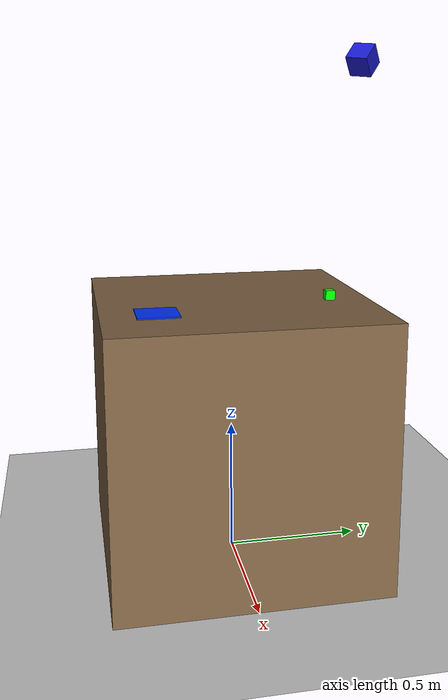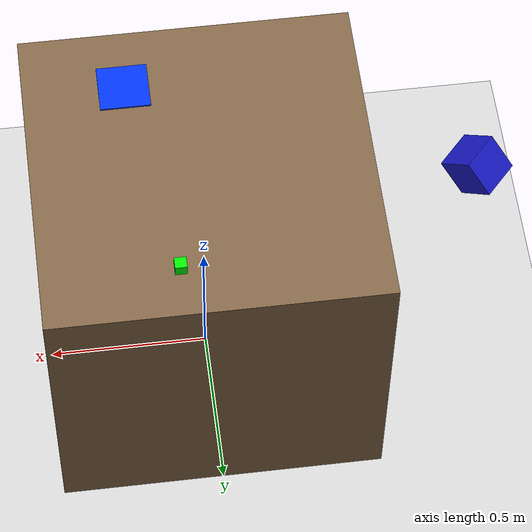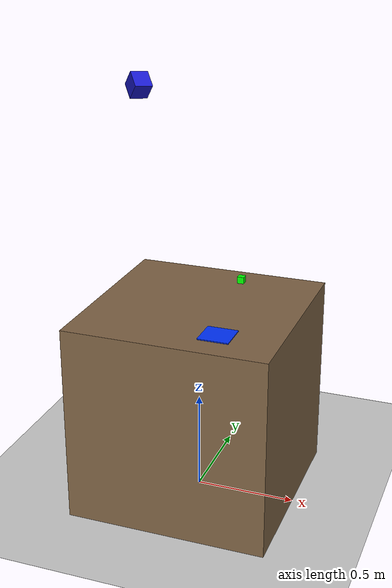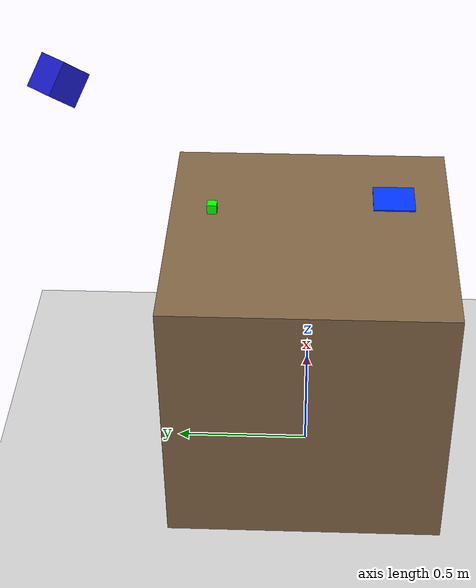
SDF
<?xml version="1.0" ?>
<sdf version="1.6">
    <world name="workcell">

        <physics name="1ms" type="ignored">
            <max_step_size>0.001</max_step_size>
            <real_time_factor>1.0</real_time_factor>
        </physics>

        <gravity>0 0 -9.8</gravity>

        <!-- SYSTEM PLUGINS                                                    -->
        <plugin filename="gz-sim-physics-system"
                name="gz::sim::systems::Physics"/>
        <plugin filename="gz-sim-user-commands-system"
                name="gz::sim::systems::UserCommands"/>
        <plugin filename="gz-sim-scene-broadcaster-system"
                name="gz::sim::systems::SceneBroadcaster"/>
        <plugin filename="gz-sim-contact-system"
                name="gz::sim::systems::Contact"/>
        <!-- Camera and lidar rendering -->
        <plugin filename="gz-sim-sensors-system"
                name="gz::sim::systems::Sensors">
        <render_engine>ogre2</render_engine>
        </plugin>
        <!-- IMU -->
        <plugin filename="gz-sim-imu-system"
                name="gz::sim::systems::Imu"/>

        <!-- Ground -->
        <model name="ground">
            <static>true</static>

            <link name="link">
                <collision name="collision">
                <geometry>
                    <plane>
                    <normal>0 0 1</normal>
                    <size>20 20</size>
                    </plane>
                </geometry>
                </collision>

                <visual name="visual">
                <geometry>
                    <plane>
                    <normal>0 0 1</normal>
                    <size>20 20</size>
                    </plane>
                </geometry>
                </visual>
            </link>
        </model>

        <light type="directional" name="sun">
            <cast_shadows>true</cast_shadows>
            <pose>0 0 10 0 0 0</pose>
            <diffuse>0.8 0.8 0.8 1</diffuse>
            <specular>0.2 0.2 0.2 1</specular>
            <direction>-0.4 0.2 -1.0</direction>
        </light>

        <!-- A simple white box model where Franka is placed-->
        <model name="box">
            <static>true</static>
            <pose>0 0 0.5 0 0 0</pose>
            <link name="link">
                <pose>0 0 0 0 0 0</pose>
                <collision name="collision">
                    <geometry>
                        <box>
                            <size>1 1 1</size>
                        </box>
                    </geometry>
                </collision>
                <visual name="visual">
                    <geometry>
                        <box>
                            <size>1 1 1</size>
                        </box>
                    </geometry>
                    <material>
                        <ambient>0.5 0.39 0.27 1</ambient>
                        <diffuse>0.5 0.39 0.27 1</diffuse>
                    </material>
                </visual>
            </link>
        </model>

        <!-- Small green box for pick and place test task -->
        <model name="pick_place_box">
            <pose>0.1 0.35 1.02 0 0 0</pose>
            <link name="link">
                <pose>0 0 0 0 0 0</pose>
                <inertial>
                    <mass>0.01</mass>
                </inertial>
                <collision name="collision">
                    <geometry>
                        <box>
                            <size>0.035 0.035 0.035</size>
                        </box>
                    </geometry>
                    <surface>
                        <friction>
                            <ode>
                                <mu>1.0</mu>
                                <mu2>1.0</mu2>
                            </ode>
                        </friction>
                    </surface>
                </collision>
                <visual name="visual">
                    <geometry>
                        <box>
                            <size>0.035 0.035 0.035</size>
                        </box>
                    </geometry>
                    <material>
                        <ambient>0 1 0 1</ambient>
                        <diffuse>0 1 0 1</diffuse>
                    </material>
                </visual>
            </link>
        </model>

        <model name="blue_place_surface">
            <static>true</static>
            <pose>0.2 -0.3 1.0025 0 0 0</pose>
            <link name="link">
                <pose>0 0 0 0 0 0</pose>
                <inertial>
                    <mass>0.01</mass>
                </inertial>
                <collision name="collision">
                    <geometry>
                        <box>
                            <size>0.15 0.15 0.005</size>
                        </box>
                    </geometry>
                    <surface>
                        <friction>
                            <ode>
                                <mu>1.0</mu>
                                <mu2>1.0</mu2>
                            </ode>
                        </friction>
                    </surface>
                </collision>
                <visual name="visual">
                    <geometry>
                        <box>
                            <size>0.15 0.15 0.005</size>
                        </box>
                    </geometry>
                    <material>
                        <ambient>0 0.2 1 1</ambient>
                        <diffuse>0 0.2 1 1</diffuse>
                    </material>
                </visual>
            </link>
        </model>

        <!-- Camera to capture the workcell from the side -->
        <model name='side_camera'>
            <pose>-0.6 0.7 1.9 -0.1 0.7 -0.83</pose>
            <static>true</static>
            <link name='side_camera_link'>
                <visual name='visual'>
                    <geometry>
                        <box>
                            <size>0.1 0.1 0.1</size>
                        </box>
                    </geometry>
                    <material>
                        <ambient>0.1 0.1 0.8 1</ambient>
                        <diffuse>0.1 0.1 0.8 1</diffuse>
                    </material>
                </visual>
                <sensor name='camera_sensor' type='camera'>
                    <topic>/side_camera/image</topic>
                    <always_on>true</always_on>
                    <update_rate>30</update_rate>
                    <visualize>true</visualize>
                    <camera>
                        <horizontal_fov>1.047</horizontal_fov>
                        <image>
                            <width>640</width>
                            <height>480</height>
                            <format>R8G8B8</format>
                        </image>
                        <clip>
                            <near>0.05</near>
                            <far>10.0</far>
                        </clip>
                    </camera>
                </sensor>
            </link>
        </model>

    </world>
</sdf>
